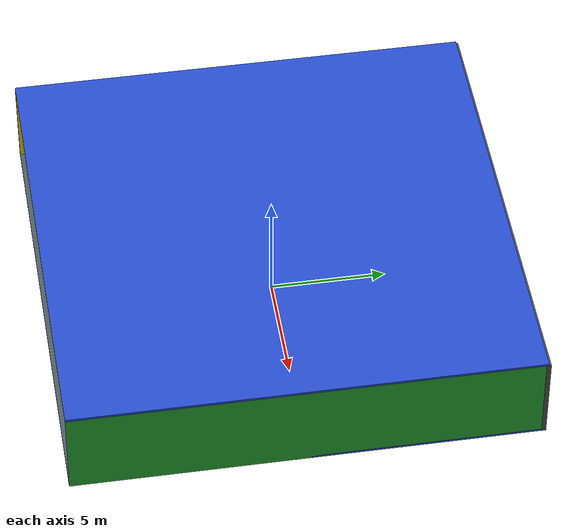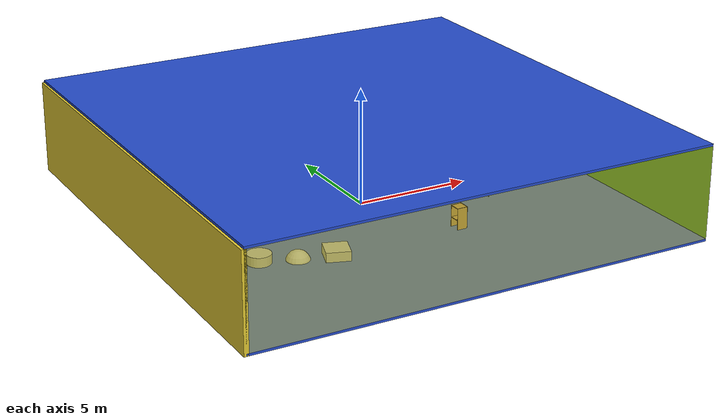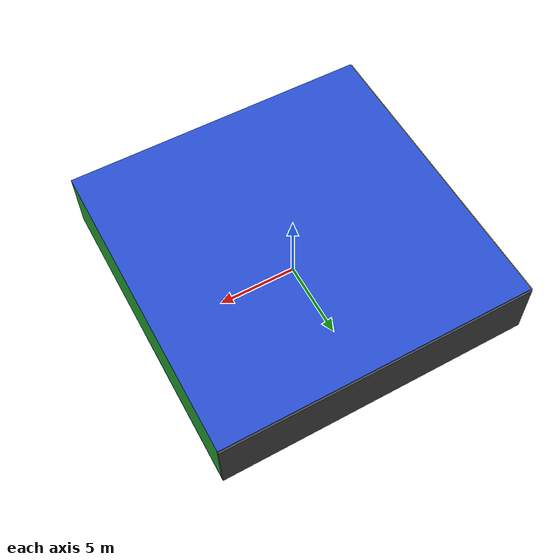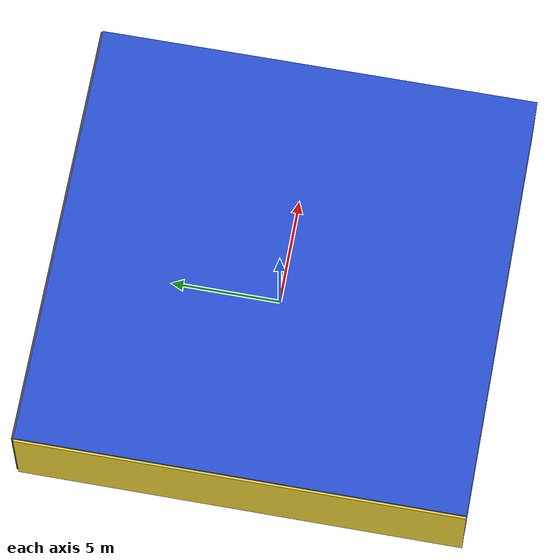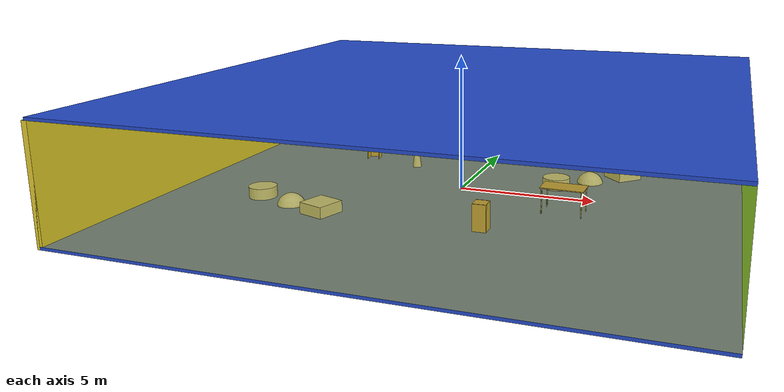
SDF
<sdf version="1.4">
 <world name="default">
  <physics type="ode">
   <max_step_size>0.001</max_step_size>
   <real_time_factor>1</real_time_factor>
   <real_time_update_rate>1000</real_time_update_rate>
   <gravity>0 0 -9.8</gravity>
  </physics>
  <scene><ambient>0.4 0.4 0.4 1</ambient><background>0.7 0.7 0.7 1</background><shadows>1</shadows></scene>
  <model name="Surrounding">
   <static>1</static>
   <link name="Ceiling">
    <collision name="Ceiling_Collision"><geometry><box><size>20 20 0.1</size></box></geometry></collision>
    <visual name="Ceiling_Visual">
     <geometry><box><size>20 20 0.1</size></box></geometry>
     <material>
      <script><uri>file://media/materials/scripts/gazebo.material</uri><name>Gazebo/Blue</name></script>
     </material>
    </visual>
    <pose>0 0 4.05 0 0 0</pose>
   </link>
   <link name="Wall_South">
    <collision name="Wall_South_Collision">
     <geometry><box><size>20 0 4</size></box></geometry>
     <pose>0 0 2 0 -0 0</pose>
    </collision>
    <visual name="Wall_South_Visual">
     <pose>0 0 2 0 -0 0</pose>
     <geometry><box><size>20 0 4</size></box></geometry>
     <material>
      <script>
       <uri>file://media/materials/scripts/gazebo.material</uri>
       <name>Gazebo/YellowTransparent</name>
      </script>
     </material>
    </visual>
    <velocity_decay><linear>0</linear><angular>0</angular></velocity_decay>
    <pose>0 -10 0 0 -0 0</pose>
   </link>
   <link name="Wall_East">
    <collision name="Wall_21_Collision">
     <geometry><box><size>20 0 4</size></box></geometry>
     <pose>0 0 2 0 -0 0</pose>
    </collision>
    <visual name="Wall_21_Visual">
     <pose>0 0 2 0 -0 0</pose>
     <geometry><box><size>20 0 4</size></box></geometry>
     <material>
      <script><uri>file://media/materials/scripts/gazebo.material</uri><name>Gazebo/Green</name></script>
     </material>
    </visual>
    <velocity_decay><linear>0</linear><angular>0</angular></velocity_decay>
    <pose>10 0 0 0 -0 1.5708</pose>
   </link>
   <link name="Wall_North">
    <collision name="Wall_22_Collision">
     <geometry><box><size>20 0.2 4</size></box></geometry>
     <pose>0 0 2 0 -0 0</pose>
    </collision>
    <visual name="Wall_22_Visual">
     <pose>0 0 2 0 -0 0</pose>
     <geometry><box><size>20 0.2 4</size></box></geometry>
     <material>
      <script><uri>file://media/materials/scripts/gazebo.material</uri><name>Gazebo/DarkGrey</name></script>
     </material>
    </visual>
    <velocity_decay><linear>0</linear><angular>0</angular></velocity_decay>
    <pose>0 10 0 0 -0 0</pose>
   </link>
   <link name="Wall_West">
    <collision name="Wall_23_Collision">
     <geometry><box><size>20 0.2 4</size></box></geometry>
     <pose>0 0 2 0 -0 0</pose>
    </collision>
    <visual name="Wall_23_Visual">
     <pose>0 0 2 0 -0 0</pose>
     <geometry><box><size>20 0.2 4</size></box></geometry>
     <material>
      <script><uri>file://media/materials/scripts/gazebo.material</uri><name>Gazebo/ZincYellow</name></script>
     </material>
    </visual>
    <velocity_decay><linear>0</linear><angular>0</angular></velocity_decay>
    <pose>-10 0 0 0 0 -1.5708</pose>
   </link>
   <link name="Ground_link">
    <collision name="collision">
     <pose>0 0 .05 0 -0 0</pose>
     <geometry><box><size>20 20 0.1</size></box></geometry>
    </collision>
    <visual name="visual">
     <pose>0 0 .05 0 -0 0</pose>
     <geometry><box><size>20 20 0.1</size></box></geometry>
     <material>
      <script><uri>file://media/materials/scripts/gazebo.material</uri><name>Gazebo/BlueGlow</name></script>
     </material>
    </visual>
   </link>
   <static>1</static>
  </model>
  <spherical_coordinates>
   <surface_model>EARTH_WGS84</surface_model>
   <latitude_deg>0</latitude_deg>
   <longitude_deg>0</longitude_deg>
   <elevation>0</elevation>
   <heading_deg>0</heading_deg>
  </spherical_coordinates>
  <light name="lightball_0" type="diffuse">
   <diffuse>0.8 0.8 0.8 1</diffuse>
   <specular>0.2 0.2 0.2 1</specular>
   <attenuation>
    <range>100</range>
    <constant>0.7</constant>
    <linear>0.01</linear>
    <quadratic>0.001</quadratic>
   </attenuation>
   <direction>-0.5 0.1 -0.9</direction>
   <pose>-6.52337640663 3.8900511829 3.7249803342 0 0 0</pose>
  </light>
  <light name="lightball_1" type="diffuse">
   <diffuse>0.8 0.8 0.8 1</diffuse>
   <specular>0.2 0.2 0.2 1</specular>
   <attenuation>
    <range>100</range>
    <constant>0.7</constant>
    <linear>0.01</linear>
    <quadratic>0.001</quadratic>
   </attenuation>
   <direction>-0.5 0.1 -0.9</direction>
   <pose>1.30729149231 -0.949083895862 2.27701348917 0 0 0</pose>
  </light>
  <light name="lightball_2" type="diffuse">
   <diffuse>0.8 0.8 0.8 1</diffuse>
   <specular>0.2 0.2 0.2 1</specular>
   <attenuation>
    <range>100</range>
    <constant>0.7</constant>
    <linear>0.01</linear>
    <quadratic>0.001</quadratic>
   </attenuation>
   <direction>-0.5 0.1 -0.9</direction>
   <pose>-1.65928245362 4.993272419 2.103106204 0 0 0</pose>
  </light>
  <include>
   <uri>model://textured_shapes</uri>
   <pose>-4.95117587382 -3.95578368099 0 0 0 1.25012969717</pose>
  </include>
  <include><uri>model://cabinet</uri><pose>-4.82033110405 2.69425488202 0 0 0 1.73804615521</pose></include>
  <include><uri>model://cabinet</uri><pose>-3.62282958313 6.51129851261 0 0 0 1.0957864566</pose></include>
  <include>
   <uri>model://construction_cone</uri>
   <pose>-2.59692095254 2.00926417098 0 0 0 2.83019058995</pose>
  </include>
  <include><uri>model://cabinet</uri><pose>2.10960234589 -4.28518476401 0 0 0 0.0146093707207</pose></include>
  <include><uri>model://table</uri><pose>4.25464608484 -1.76608266476 0 0 0 3.10363769441</pose></include>
  <include>
   <uri>model://textured_shapes</uri>
   <pose>4.49766390272 2.02310247656 0 0 0 2.32883342049</pose>
  </include>
  <include>
   <uri>model://robocup_3Dsim_goal</uri>
   <pose>8.10888626218 8.42641725702 0 0 0 1.5098842294</pose>
  </include>
 </world>
</sdf>

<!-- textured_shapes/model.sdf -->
<sdf version="1.6">
  <model name="textured_shapes">
    <pose>0 0 0.5 0 0 0</pose>
    <link name="box">
      <pose>0 -1.5 0 0 0 0</pose>
      <collision name="collision">
        <geometry>
          <box>
            <size>1 1 1</size>
          </box>
        </geometry>
      </collision>
      <visual name="visual">
        <geometry>
          <box>
            <size>1 1 1</size>
          </box>
        </geometry>
        <material>
          <script>
            <uri>model://../model_source/models/textured_shapes/materials/scripts</uri>
            <uri>model://../model_source/models/textured_shapes/materials/textures</uri>
            <name>TexturedShape/Squares</name>
          </script>
        </material>
      </visual>
    </link>
    <link name="sphere">
      <collision name="collision">
        <geometry>
          <sphere>
            <radius>0.5</radius>
          </sphere>
        </geometry>
      </collision>
      <visual name="visual">
        <geometry>
          <sphere>
            <radius>0.5</radius>
          </sphere>
        </geometry>
        <material>
          <script>
            <uri>model://../model_source/models/textured_shapes/materials/scripts</uri>
            <uri>model://../model_source/models/textured_shapes/materials/textures</uri>
            <name>TexturedShape/Squares</name>
          </script>
        </material>
      </visual>
    </link>
    <link name="cylinder">
      <pose>0 1.5 0 0 0 0</pose>
      <collision name="collision">
        <geometry>
          <cylinder>
            <radius>0.5</radius>
            <length>1</length>
          </cylinder>
        </geometry>
      </collision>
      <visual name="visual">
        <geometry>
          <cylinder>
            <radius>0.5</radius>
            <length>1</length>
          </cylinder>
        </geometry>
        <material>
          <script>
            <uri>model://../model_source/models/textured_shapes/materials/scripts</uri>
            <uri>model://../model_source/models/textured_shapes/materials/textures</uri>
            <name>TexturedShape/Squares</name>
          </script>
        </material>
      </visual>
    </link>
  </model>
</sdf>

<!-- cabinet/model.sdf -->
<sdf version="1.5">
  <model name="cabinet">
    <static>true</static>
    <link name="cabinet_bottom_plate">
      <inertial>
        <pose>0 0 -1 0 0 0</pose>
        <inertia>
          <ixx>2.050000</ixx>
          <ixy>0</ixy>
          <ixz>0</ixz>
          <iyy>2.050000</iyy>
          <iyz>0</iyz>
          <izz>2.050000</izz>
        </inertia>
        <mass>25.000000</mass>
      </inertial>
      <collision name="cabinet_bottom_plate_geom">
        <pose>0 0 0.010000 0 0 0</pose>
        <geometry>
          <box>
            <size>0.450000 0.450000 0.020000</size>
          </box>
        </geometry>
      </collision>
      <visual name="cabinet_bottom_plate_geom_visual">
        <pose>0 0 0.010000 0 0 0</pose>
        <geometry>
          <box>
            <size>0.450000 0.450000 0.020000</size>
          </box>
        </geometry>
        <material>
          <script>
            <uri>model://media/materials/scripts/gazebo.material</uri>
            <name>Gazebo/Wood</name>
          </script>
        </material>
      </visual>
      <collision name="cabinet_bottom_plate_geom_cabinet_back_plate">
        <pose>0.235000 0 0.510000 0 0 0</pose>
        <geometry>
          <box>
            <size>0.020000 0.450000 1.020000</size>
          </box>
        </geometry>
      </collision>
      <visual name="cabinet_bottom_plate_geom_cabinet_back_plate_visual">
        <pose>0.235000 0 0.510000 0 0 0</pose>
        <geometry>
          <box>
            <size>0.020000 0.450000 1.020000</size>
          </box>
        </geometry>
        <material>
          <script>
            <uri>model://media/materials/scripts/gazebo.material</uri>
            <name>Gazebo/Wood</name>
          </script>
        </material>
      </visual>
      <collision name="cabinet_bottom_plate_geom_cabinet_left_plate">
        <pose>0 0.235000 0.510000 0 0 0</pose>
        <geometry>
          <box>
            <size>0.450000 0.020000 1.020000</size>
          </box>
        </geometry>
      </collision>
      <visual name="cabinet_bottom_plate_geom_cabinet_left_plate_visual">
        <pose>0 0.235000 0.510000 0 0 0</pose>
        <geometry>
          <box>
            <size>0.450000 0.020000 1.020000</size>
          </box>
        </geometry>
        <material>
          <script>
            <uri>model://media/materials/scripts/gazebo.material</uri>
            <name>Gazebo/Wood</name>
          </script>
        </material>
      </visual>
      <collision name="cabinet_bottom_plate_geom_cabinet_middle_plate">
        <pose>0 0 0.510000 0 0 0</pose>
        <geometry>
          <box>
            <size>0.450000 0.450000 0.020000</size>
          </box>
        </geometry>
      </collision>
      <visual name="cabinet_bottom_plate_geom_cabinet_middle_plate_visual">
        <pose>0 0 0.510000 0 0 0</pose>
        <geometry>
          <box>
            <size>0.450000 0.450000 0.020000</size>
          </box>
        </geometry>
        <material>
          <script>
            <uri>model://media/materials/scripts/gazebo.material</uri>
            <name>Gazebo/Wood</name>
          </script>
        </material>
      </visual>
      <collision name="cabinet_bottom_plate_geom_cabinet_right_plate">
        <pose>0 -0.235000 0.510000 0 0 0</pose>
        <geometry>
          <box>
            <size>0.450000 0.020000 1.020000</size>
          </box>
        </geometry>
      </collision>
      <visual name="cabinet_bottom_plate_geom_cabinet_right_plate_visual">
        <pose>0 -0.235000 0.510000 0 0 0</pose>
        <geometry>
          <box>
            <size>0.450000 0.020000 1.020000</size>
          </box>
        </geometry>
        <material>
          <script>
            <uri>model://media/materials/scripts/gazebo.material</uri>
            <name>Gazebo/Wood</name>
          </script>
        </material>
      </visual>
      <collision name="cabinet_bottom_plate_geom_cabinet_top_plate">
        <pose>0 0 1.010000 0 0 0</pose>
        <geometry>
          <box>
            <size>0.450000 0.450000 0.020000</size>
          </box>
        </geometry>
      </collision>
      <visual name="cabinet_bottom_plate_geom_cabinet_top_plate_visual">
        <pose>0 0 1.010000 0 0 0</pose>
        <geometry>
          <box>
            <size>0.450000 0.450000 0.020000</size>
          </box>
        </geometry>
        <material>
          <script>
            <uri>model://media/materials/scripts/gazebo.material</uri>
            <name>Gazebo/Wood</name>
          </script>
        </material>
      </visual>
    </link>
  </model>
</sdf>

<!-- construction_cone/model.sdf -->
<sdf version="1.5">
  <model name="Construction Cone">
    <link name="link">
      <collision name="collision">
        <geometry>
          <mesh>
            <scale>10 10 10</scale>
            <uri>file://isr-testbed/construction_cone/meshes/construction_cone.dae</uri>
          </mesh>
        </geometry>
      </collision>
      <visual name="visual">
        <geometry>
          <mesh>
            <scale>10 10 10</scale>
            <uri>file://isr-testbed/construction_cone/meshes/construction_cone.dae</uri>
          </mesh>
        </geometry>
      </visual>
    </link>
  </model>
</sdf>

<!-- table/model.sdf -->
<sdf version="1.5">
  <model name="table">
    <static>true</static>
    <link name="link">
      <collision name="surface">
        <pose>0 0 1.0 0 0 0</pose>
        <geometry>
          <box>
            <size>1.5 0.8 0.03</size>
          </box>
        </geometry>
        <surface>
          <friction>
            <ode>
              <mu>0.6</mu>
              <mu2>0.6</mu2>
            </ode>
          </friction>
        </surface>
      </collision>
      <visual name="visual1">
        <pose>0 0 1.0 0 0 0</pose>
        <geometry>
          <box>
            <size>1.5 0.8 0.03</size>
          </box>
        </geometry>
        <material>
          <script>
            <uri>model://media/materials/scripts/gazebo.material</uri>
            <name>Gazebo/Wood</name>
          </script>
        </material>
      </visual>
      <collision name="front_left_leg">
        <pose>0.68 0.38 0.5 0 0 0</pose>
        <geometry>
          <cylinder>
            <radius>0.02</radius>
            <length>1.0</length>
          </cylinder>
        </geometry>
      </collision>
      <visual name="front_left_leg">
        <pose>0.68 0.38 0.5 0 0 0</pose>
        <geometry>
          <cylinder>
            <radius>0.02</radius>
            <length>1.0</length>
          </cylinder>
        </geometry>
        <material>
          <script>
            <uri>model://media/materials/scripts/gazebo.material</uri>
            <name>Gazebo/Grey</name>
          </script>
        </material>
      </visual>
      <collision name="front_right_leg">
        <pose>0.68 -0.38 0.5 0 0 0</pose>
        <geometry>
          <cylinder>
            <radius>0.02</radius>
            <length>1.0</length>
          </cylinder>
        </geometry>
      </collision>
      <visual name="front_right_leg">
        <pose>0.68 -0.38 0.5 0 0 0</pose>
        <geometry>
          <cylinder>
            <radius>0.02</radius>
            <length>1.0</length>
          </cylinder>
        </geometry>
        <material>
          <script>
            <uri>model://media/materials/scripts/gazebo.material</uri>
            <name>Gazebo/Grey</name>
          </script>
        </material>
      </visual>
      <collision name="back_right_leg">
        <pose>-0.68 -0.38 0.5 0 0 0</pose>
        <geometry>
          <cylinder>
            <radius>0.02</radius>
            <length>1.0</length>
          </cylinder>
        </geometry>
      </collision>
      <visual name="back_right_leg">
        <pose>-0.68 -0.38 0.5 0 0 0</pose>
        <geometry>
          <cylinder>
            <radius>0.02</radius>
            <length>1.0</length>
          </cylinder>
        </geometry>
        <material>
          <script>
            <uri>model://media/materials/scripts/gazebo.material</uri>
            <name>Gazebo/Grey</name>
          </script>
        </material>
      </visual>
      <collision name="back_left_leg">
        <pose>-0.68 0.38 0.5 0 0 0</pose>
        <geometry>
          <cylinder>
            <radius>0.02</radius>
            <length>1.0</length>
          </cylinder>
        </geometry>
      </collision>
      <visual name="back_left_leg">
        <pose>-0.68 0.38 0.5 0 0 0</pose>
        <geometry>
          <cylinder>
            <radius>0.02</radius>
            <length>1.0</length>
          </cylinder>
        </geometry>
        <material>
          <script>
            <uri>model://media/materials/scripts/gazebo.material</uri>
            <name>Gazebo/Grey</name>
          </script>
        </material>
      </visual>
    </link>
  </model>
</sdf>

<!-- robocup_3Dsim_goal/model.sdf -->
<sdf version="1.5">
  <model name="robocup_3d_goal">
    <static>true</static>
    <link name="left_post">
      <pose>0 1.05 0.45 0 0 0</pose>
      <collision name="collision">
        <geometry>
          <cylinder>
            <radius>0.05</radius>
            <length>0.9</length>
          </cylinder>
        </geometry>
      </collision>
      <visual name="visual">
        <geometry>
          <cylinder>
            <radius>0.05</radius>
            <length>0.9</length>
          </cylinder>
        </geometry>
        <material>
          <script>
            <uri>file://media/materials/scripts/gazebo.material</uri>
            <name>Gazebo/ZincYellow</name>
          </script>
        </material>
      </visual>
    </link>
    <link name="left_support_horiz_lower">
      <pose>0.30 1.05 0.01 0 0 0</pose>
      <collision name="collision">
        <geometry>
          <box>
            <size>0.50 0.02 0.02</size>
          </box>
        </geometry>
      </collision>
      <visual name="visual">
        <geometry>
          <box>
            <size>0.50 0.02 0.02</size>
          </box>
        </geometry>
        <material>
          <script>
            <uri>file://media/materials/scripts/gazebo.material</uri>
            <name>Gazebo/White</name>
          </script>
        </material>
      </visual>
    </link>
    <link name="left_support_horiz_upper">
      <pose>0.30 1.05 0.79 0 0 0</pose>
      <collision name="collision">
        <geometry>
          <box>
            <size>0.50 0.02 0.02</size>
          </box>
        </geometry>
      </collision>
      <visual name="visual">
        <geometry>
          <box>
            <size>0.50 0.02 0.02</size>
          </box>
        </geometry>
        <material>
          <script>
            <uri>file://media/materials/scripts/gazebo.material</uri>
            <name>Gazebo/White</name>
          </script>
        </material>
      </visual>
    </link>
    <link name="left_support_vertical">
      <pose>0.56 1.05 0.4 0 1.5708 0</pose>
      <collision name="collision">
        <geometry>
          <box>
            <size>0.80 0.02 0.02</size>
          </box>
        </geometry>
      </collision>
      <visual name="visual">
        <geometry>
          <box>
            <size>0.80 0.02 0.02</size>
          </box>
        </geometry>
        <material>
          <script>
            <uri>file://media/materials/scripts/gazebo.material</uri>
            <name>Gazebo/White</name>
          </script>
        </material>
      </visual>
    </link>
    <link name="right_support_horiz_lower">
      <pose>0.30 -1.05 0.01 0 0 0</pose>
      <collision name="collision">
        <geometry>
          <box>
            <size>0.50 0.02 0.02</size>
          </box>
        </geometry>
      </collision>
      <visual name="visual">
        <geometry>
          <box>
            <size>0.50 0.02 0.02</size>
          </box>
        </geometry>
        <material>
          <script>
            <uri>file://media/materials/scripts/gazebo.material</uri>
            <name>Gazebo/White</name>
          </script>
        </material>
      </visual>
    </link>
    <link name="right_support_horiz_upper">
      <pose>0.30 -1.05 0.79 0 0 0</pose>
      <collision name="collision">
        <geometry>
          <box>
            <size>0.50 0.02 0.02</size>
          </box>
        </geometry>
      </collision>
      <visual name="visual">
        <geometry>
          <box>
            <size>0.50 0.02 0.02</size>
          </box>
        </geometry>
        <material>
          <script>
            <uri>file://media/materials/scripts/gazebo.material</uri>
            <name>Gazebo/White</name>
          </script>
        </material>
      </visual>
    </link>
    <link name="right_support_vertical">
      <pose>0.56 -1.05 0.4 0 1.5708 0</pose>
      <collision name="collision">
        <geometry>
          <box>
            <size>0.80 0.02 0.02</size>
          </box>
        </geometry>
      </collision>
      <visual name="visual">
        <geometry>
          <box>
            <size>0.80 0.02 0.02</size>
          </box>
        </geometry>
        <material>
          <script>
            <uri>file://media/materials/scripts/gazebo.material</uri>
            <name>Gazebo/White</name>
          </script>
        </material>
      </visual>
    </link>
    <link name="center_support_horiz_lower">
      <pose>0.56 0 0.01 0 1.5708 0</pose>
      <collision name="collision">
        <geometry>
          <box>
            <size>0.02 2.08 0.02</size>
          </box>
        </geometry>
      </collision>
      <visual name="visual">
        <geometry>
          <box>
            <size>0.02 2.08 0.02</size>
          </box>
        </geometry>
        <material>
          <script>
            <uri>file://media/materials/scripts/gazebo.material</uri>
            <name>Gazebo/White</name>
          </script>
        </material>
      </visual>
    </link>
    <link name="center_support_horiz_upper">
      <pose>0.56 0 0.79 0 1.5708 0</pose>
      <collision name="collision">
        <geometry>
          <box>
            <size>0.02 2.08 0.02</size>
          </box>
        </geometry>
      </collision>
      <visual name="visual">
        <geometry>
          <box>
            <size>0.02 2.08 0.02</size>
          </box>
        </geometry>
        <material>
          <script>
            <uri>file://media/materials/scripts/gazebo.material</uri>
            <name>Gazebo/White</name>
          </script>
        </material>
      </visual>
    </link>
    <link name="right_post">
      <pose>0 -1.05 0.45 0 0 0</pose>
      <collision name="collision">
        <geometry>
          <cylinder>
            <radius>0.05</radius>
            <length>0.9</length>
          </cylinder>
        </geometry>
      </collision>
      <visual name="visual">
        <geometry>
          <cylinder>
            <radius>0.05</radius>
            <length>0.9</length>
          </cylinder>
        </geometry>
        <material>
          <script>
            <uri>file://media/materials/scripts/gazebo.material</uri>
            <name>Gazebo/ZincYellow</name>
          </script>
        </material>
      </visual>
    </link>
    <link name="crossbar">
      <pose>0 0 0.85 1.57 1.57 0</pose>
      <collision name="collision">
        <geometry>
          <cylinder>
            <radius>0.05</radius>
            <length>2.0</length>
          </cylinder>
        </geometry>
      </collision>
      <visual name="visual">
        <geometry>
          <cylinder>
            <radius>0.05</radius>
            <length>2.0</length>
          </cylinder>
        </geometry>
        <material>
          <script>
            <uri>file://media/materials/scripts/gazebo.material</uri>
            <name>Gazebo/ZincYellow</name>
          </script>
        </material>
      </visual>
    </link>
    <link name="center_net">
      <pose>0.56 0 0.40 0 0 0</pose>
      <collision name="collision">
        <geometry>
          <box>
            <size>0.01 2.1 0.80</size>
          </box>
        </geometry>
      </collision>
      <visual name="visual">
        <geometry>
          <box>
            <size>0.01 2.1 0.80</size>
          </box>
        </geometry>
        <material>
          <script>
            <uri>model://../model_source/models/robocup09_spl_field/materials/scripts/</uri>
            <uri>model://../model_source/models/robocup09_spl_field/materials/textures/</uri>
            <name>RoboCup/Net</name>
          </script>
        </material>
      </visual>
    </link>
    <link name="left_net">
      <pose>0.30 1.05 0.40 0 0 0</pose>
      <collision name="collision">
        <geometry>
          <box>
            <size>0.50 0.01 0.76</size>
          </box>
        </geometry>
      </collision>
      <visual name="visual">
        <geometry>
          <box>
            <size>0.50 0.01 0.76</size>
          </box>
        </geometry>
        <material>
          <script>
            <uri>model://../model_source/models/robocup09_spl_field/materials/scripts/</uri>
            <uri>model://../model_source/models/robocup09_spl_field/materials/textures/</uri>
            <name>RoboCup/Net</name>
          </script>
        </material>
      </visual>
    </link>
    <link name="right_net">
      <pose>0.30 -1.05 0.40 0 0 0</pose>
      <collision name="collision">
        <geometry>
          <box>
            <size>0.50 0.01 0.76</size>
          </box>
        </geometry>
      </collision>
      <visual name="visual">
        <geometry>
          <box>
            <size>0.50 0.01 0.76</size>
          </box>
        </geometry>
        <material>
          <script>
            <uri>model://../model_source/models/robocup09_spl_field/materials/scripts/</uri>
            <uri>model://../model_source/models/robocup09_spl_field/materials/textures/</uri>
            <name>RoboCup/Net</name>
          </script>
        </material>
      </visual>
    </link>
  </model>
</sdf>
